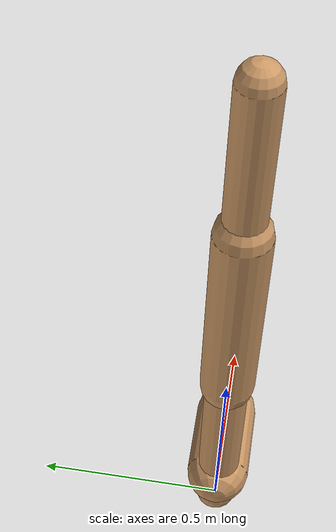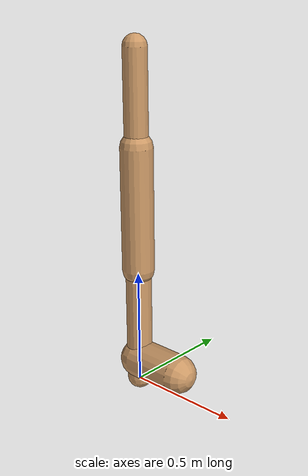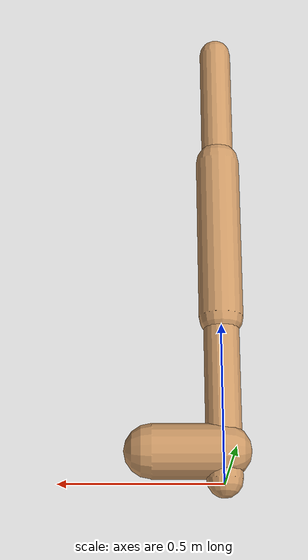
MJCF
<mujoco model="walker2d">
  <compiler angle="degree" coordinate="global" inertiafromgeom="true" />
  <default>
    <joint armature="0.01" damping=".1" limited="true" />
    <geom conaffinity="0" condim="3" contype="1" density="1000" friction="0.8 .1 .1" rgba="0.8 0.6 .4 1" />
  </default>
  <option integrator="RK4" timestep="0.002" />
  <worldbody>

    <body name="torso" pos="0 0 0.16281290220226696">
      <joint armature="0" axis="1 0 0" damping="0" limited="false" name="ignorex" pos="0 0 0" stiffness="0" type="slide" />
      <joint armature="0" axis="0 0 1" damping="0" limited="false" name="ignorez" pos="0 0 0" ref="1.25" stiffness="0" type="slide" />
      <joint armature="0" axis="0 1 0" damping="0" limited="false" name="ignorey" pos="0 0 0" stiffness="0" type="hinge" />
      <geom fromto="0 0 1.45 0 0 1.05" name="torso_geom" size="0.05046256286515506" type="capsule" />
      <body name="thigh">
        <joint axis="0 -1 0" name="thigh_joint" pos="0 0 1.05" range="-150 0" type="hinge" />
        <geom fromto="0.0 0.0 1.05 0.0 0.0 0.5228780989568209" name="thigh_geom" size="0.06916531908028592" type="capsule" />
        <body name="leg" pos="0.0 0.0 -0.07712190104317906">
          <joint axis="0 -1 0" name="leg_joint" pos="0 0 0.6" range="-150 0" type="hinge" />
          <geom fromto="0.0 0.0 0.6 0.0 0.0 0.014308998840912135" name="leg_geom" size="0.05533225526422873" type="capsule" />
          <body name="foot" pos="0.0 0.0 -0.08569100115908787">
            <joint axis="0 -1 0" name="foot_joint" pos="0 0 0.1" range="-45 45" type="hinge" />
            <geom fromto="-0.0 0.0 0.1 0.21855691016045858 0.0 0.1" name="foot_geom" size="0.08421360108441522" type="capsule" />
          </body>
        </body>
      </body>

      <body name="thigh_left">
        <joint axis="0 -1 0" name="thigh_left_joint" pos="0 0 1.05" range="-150 0" type="hinge" />
        <geom fromto="0.0 0.0 1.05 0.0 0.0 0.5228780989568209" name="thigh_left_geom" rgba=".7 .3 .6 1" size="0.06916531908028592" type="capsule" />
        <body name="leg_left" pos="0.0 0.0 -0.07712190104317906">
          <joint axis="0 -1 0" name="leg_left_joint" pos="0 0 0.6" range="-150 0" type="hinge" />
          <geom fromto="0.0 0.0 0.6 0.0 0.0 0.014308998840912135" name="leg_left_geom" rgba=".7 .3 .6 1" size="0.05533225526422873" type="capsule" />
          <body name="foot_left" pos="0.0 0.0 -0.08569100115908787">
            <joint axis="0 -1 0" name="foot_left_joint" pos="0 0 0.1" range="-45 45" type="hinge" />
            <geom fromto="-0.0 0.0 0.1 0.21855691016045858 0.0 0.1" name="foot_left_geom" rgba=".7 .3 .6 1" size="0.08421360108441522" type="capsule" />
          </body>
        </body>
      </body>
    </body>
  </worldbody>
  <actuator>

    <motor ctrllimited="true" ctrlrange="-1.0 1.0" gear="100" joint="thigh_joint" />
    <motor ctrllimited="true" ctrlrange="-1.0 1.0" gear="100" joint="leg_joint" />
    <motor ctrllimited="true" ctrlrange="-1.0 1.0" gear="100" joint="foot_joint" />
    <motor ctrllimited="true" ctrlrange="-1.0 1.0" gear="100" joint="thigh_left_joint" />
    <motor ctrllimited="true" ctrlrange="-1.0 1.0" gear="100" joint="leg_left_joint" />
    <motor ctrllimited="true" ctrlrange="-1.0 1.0" gear="100" joint="foot_left_joint" />

  </actuator>
</mujoco>
